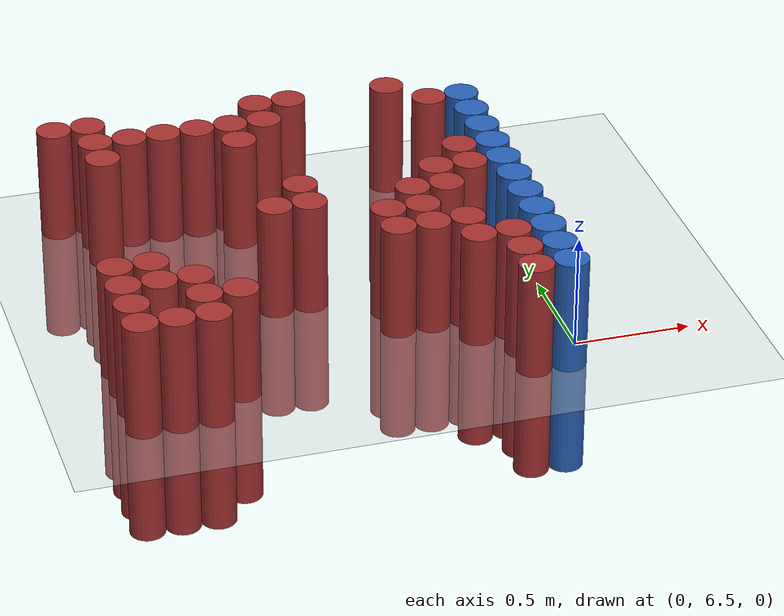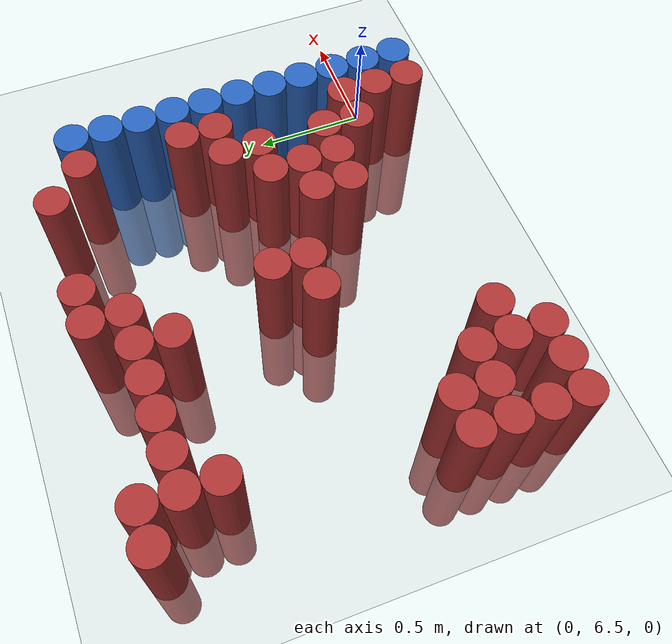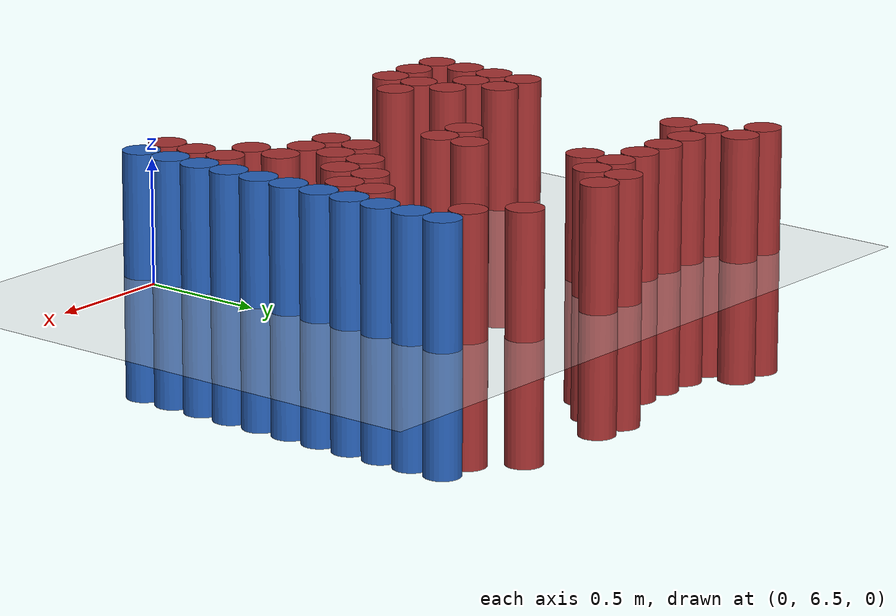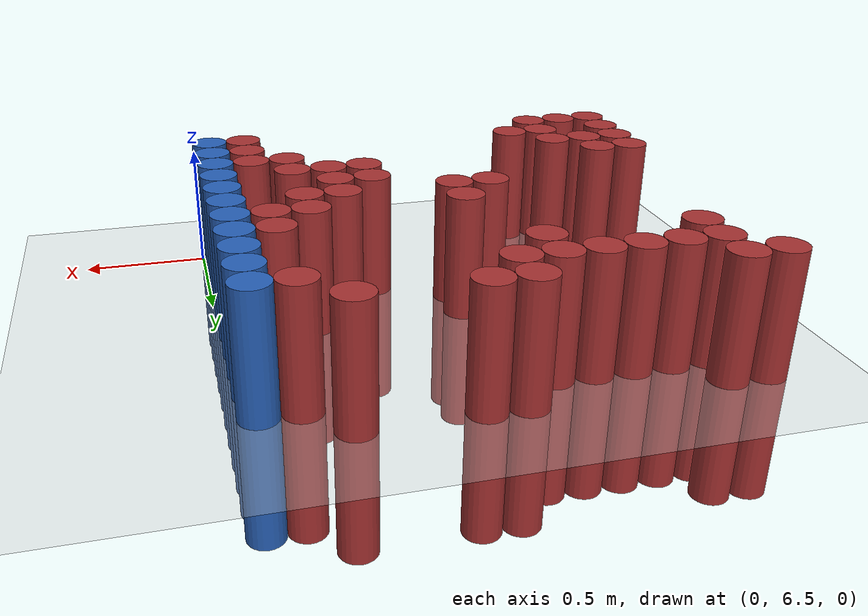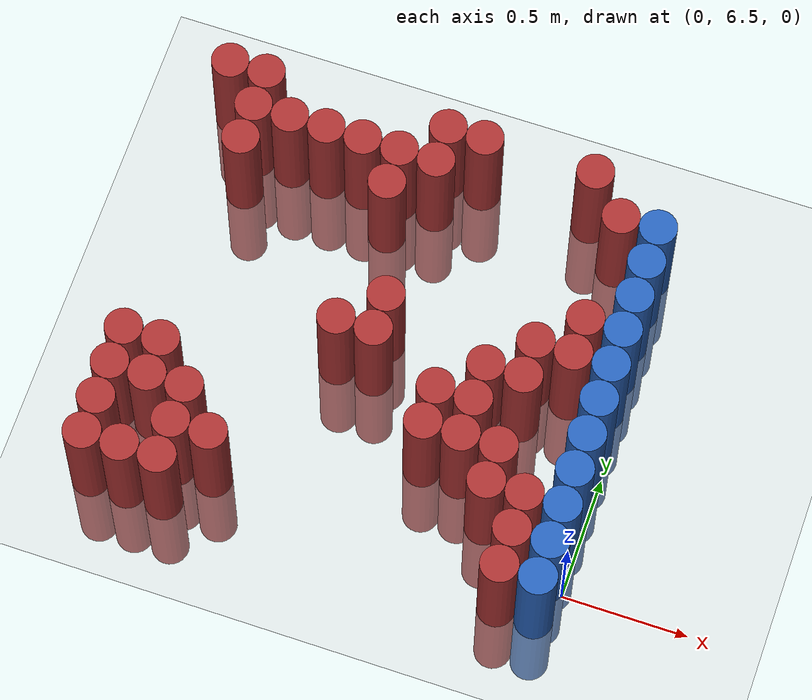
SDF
<sdf version="1.6">
 <world name="default">
  <model name="ground_plane">
   <static>1</static>
   <link name="link">
    <collision name="collision">
     <geometry><plane><normal>0 0 1</normal><size>100 100</size></plane></geometry>
     <surface><friction><ode><mu>100</mu><mu2>50</mu2></ode></friction></surface>
    </collision>
    <visual name="visual">
     <cast_shadows>0</cast_shadows>
     <geometry><plane><normal>0 0 1</normal><size>100 100</size></plane></geometry>
     <material>
      <script><uri>file://media/materials/scripts/gazebo.material</uri><name>Gazebo/Grey</name></script>
     </material>
    </visual>
   </link>
  </model>
  <model name="unit_cylinder_183">
   <static>1</static>
   <pose>-1.875000 6.375000 0.000000 0.000000 0.000000 0.000000</pose>
   <link name="link">
    <inertial>
     <mass>1</mass>
     <inertia><ixx>0.145833</ixx><ixy>0</ixy><ixz>0</ixz><iyy>0.145833</iyy><iyz>0</iyz><izz>0.125</izz></inertia>
    </inertial>
    <collision name="collision">
     <geometry><cylinder><radius>0.075000</radius><length>1</length></cylinder></geometry>
    </collision>
    <visual name="visual">
     <geometry><cylinder><radius>0.075000</radius><length>1</length></cylinder></geometry>
     <material>
      <ambient>0.648000 0.192000 0.192000 1</ambient>
      <diffuse>0.648000 0.192000 0.192000 1</diffuse>
     </material>
     <material>
      <script><name>Gazebo/Grey</name><uri>file://media/materials/scripts/gazebo.material</uri></script>
     </material>
    </visual>
   </link>
  </model>
  <model name="unit_cylinder_184">
   <static>1</static>
   <pose>-1.875000 6.525000 0.000000 0.000000 0.000000 0.000000</pose>
   <link name="link">
    <inertial>
     <mass>1</mass>
     <inertia><ixx>0.145833</ixx><ixy>0</ixy><ixz>0</ixz><iyy>0.145833</iyy><iyz>0</iyz><izz>0.125</izz></inertia>
    </inertial>
    <collision name="collision">
     <geometry><cylinder><radius>0.075000</radius><length>1</length></cylinder></geometry>
    </collision>
    <visual name="visual">
     <geometry><cylinder><radius>0.075000</radius><length>1</length></cylinder></geometry>
     <material>
      <ambient>0.648000 0.192000 0.192000 1</ambient>
      <diffuse>0.648000 0.192000 0.192000 1</diffuse>
     </material>
     <material>
      <script><name>Gazebo/Grey</name><uri>file://media/materials/scripts/gazebo.material</uri></script>
     </material>
    </visual>
   </link>
  </model>
  <model name="unit_cylinder_185">
   <static>1</static>
   <pose>-1.875000 6.675000 0.000000 0.000000 0.000000 0.000000</pose>
   <link name="link">
    <inertial>
     <mass>1</mass>
     <inertia><ixx>0.145833</ixx><ixy>0</ixy><ixz>0</ixz><iyy>0.145833</iyy><iyz>0</iyz><izz>0.125</izz></inertia>
    </inertial>
    <collision name="collision">
     <geometry><cylinder><radius>0.075000</radius><length>1</length></cylinder></geometry>
    </collision>
    <visual name="visual">
     <geometry><cylinder><radius>0.075000</radius><length>1</length></cylinder></geometry>
     <material>
      <ambient>0.648000 0.192000 0.192000 1</ambient>
      <diffuse>0.648000 0.192000 0.192000 1</diffuse>
     </material>
     <material>
      <script><name>Gazebo/Grey</name><uri>file://media/materials/scripts/gazebo.material</uri></script>
     </material>
    </visual>
   </link>
  </model>
  <model name="unit_cylinder_186">
   <static>1</static>
   <pose>-1.875000 6.825000 0.000000 0.000000 0.000000 0.000000</pose>
   <link name="link">
    <inertial>
     <mass>1</mass>
     <inertia><ixx>0.145833</ixx><ixy>0</ixy><ixz>0</ixz><iyy>0.145833</iyy><iyz>0</iyz><izz>0.125</izz></inertia>
    </inertial>
    <collision name="collision">
     <geometry><cylinder><radius>0.075000</radius><length>1</length></cylinder></geometry>
    </collision>
    <visual name="visual">
     <geometry><cylinder><radius>0.075000</radius><length>1</length></cylinder></geometry>
     <material>
      <ambient>0.648000 0.192000 0.192000 1</ambient>
      <diffuse>0.648000 0.192000 0.192000 1</diffuse>
     </material>
     <material>
      <script><name>Gazebo/Grey</name><uri>file://media/materials/scripts/gazebo.material</uri></script>
     </material>
    </visual>
   </link>
  </model>
  <model name="unit_cylinder_187">
   <static>1</static>
   <pose>-1.875000 8.025000 0.000000 0.000000 0.000000 0.000000</pose>
   <link name="link">
    <inertial>
     <mass>1</mass>
     <inertia><ixx>0.145833</ixx><ixy>0</ixy><ixz>0</ixz><iyy>0.145833</iyy><iyz>0</iyz><izz>0.125</izz></inertia>
    </inertial>
    <collision name="collision">
     <geometry><cylinder><radius>0.075000</radius><length>1</length></cylinder></geometry>
    </collision>
    <visual name="visual">
     <geometry><cylinder><radius>0.075000</radius><length>1</length></cylinder></geometry>
     <material>
      <ambient>0.648000 0.192000 0.192000 1</ambient>
      <diffuse>0.648000 0.192000 0.192000 1</diffuse>
     </material>
     <material>
      <script><name>Gazebo/Grey</name><uri>file://media/materials/scripts/gazebo.material</uri></script>
     </material>
    </visual>
   </link>
  </model>
  <model name="unit_cylinder_197">
   <static>1</static>
   <pose>-1.725000 6.375000 0.000000 0.000000 0.000000 0.000000</pose>
   <link name="link">
    <inertial>
     <mass>1</mass>
     <inertia><ixx>0.145833</ixx><ixy>0</ixy><ixz>0</ixz><iyy>0.145833</iyy><iyz>0</iyz><izz>0.125</izz></inertia>
    </inertial>
    <collision name="collision">
     <geometry><cylinder><radius>0.075000</radius><length>1</length></cylinder></geometry>
    </collision>
    <visual name="visual">
     <geometry><cylinder><radius>0.075000</radius><length>1</length></cylinder></geometry>
     <material>
      <ambient>0.648000 0.192000 0.192000 1</ambient>
      <diffuse>0.648000 0.192000 0.192000 1</diffuse>
     </material>
     <material>
      <script><name>Gazebo/Grey</name><uri>file://media/materials/scripts/gazebo.material</uri></script>
     </material>
    </visual>
   </link>
  </model>
  <model name="unit_cylinder_198">
   <static>1</static>
   <pose>-1.725000 6.675000 0.000000 0.000000 0.000000 0.000000</pose>
   <link name="link">
    <inertial>
     <mass>1</mass>
     <inertia><ixx>0.145833</ixx><ixy>0</ixy><ixz>0</ixz><iyy>0.145833</iyy><iyz>0</iyz><izz>0.125</izz></inertia>
    </inertial>
    <collision name="collision">
     <geometry><cylinder><radius>0.075000</radius><length>1</length></cylinder></geometry>
    </collision>
    <visual name="visual">
     <geometry><cylinder><radius>0.075000</radius><length>1</length></cylinder></geometry>
     <material>
      <ambient>0.648000 0.192000 0.192000 1</ambient>
      <diffuse>0.648000 0.192000 0.192000 1</diffuse>
     </material>
     <material>
      <script><name>Gazebo/Grey</name><uri>file://media/materials/scripts/gazebo.material</uri></script>
     </material>
    </visual>
   </link>
  </model>
  <model name="unit_cylinder_199">
   <static>1</static>
   <pose>-1.725000 6.825000 0.000000 0.000000 0.000000 0.000000</pose>
   <link name="link">
    <inertial>
     <mass>1</mass>
     <inertia><ixx>0.145833</ixx><ixy>0</ixy><ixz>0</ixz><iyy>0.145833</iyy><iyz>0</iyz><izz>0.125</izz></inertia>
    </inertial>
    <collision name="collision">
     <geometry><cylinder><radius>0.075000</radius><length>1</length></cylinder></geometry>
    </collision>
    <visual name="visual">
     <geometry><cylinder><radius>0.075000</radius><length>1</length></cylinder></geometry>
     <material>
      <ambient>0.648000 0.192000 0.192000 1</ambient>
      <diffuse>0.648000 0.192000 0.192000 1</diffuse>
     </material>
     <material>
      <script><name>Gazebo/Grey</name><uri>file://media/materials/scripts/gazebo.material</uri></script>
     </material>
    </visual>
   </link>
  </model>
  <model name="unit_cylinder_200">
   <static>1</static>
   <pose>-1.725000 7.725000 0.000000 0.000000 0.000000 0.000000</pose>
   <link name="link">
    <inertial>
     <mass>1</mass>
     <inertia><ixx>0.145833</ixx><ixy>0</ixy><ixz>0</ixz><iyy>0.145833</iyy><iyz>0</iyz><izz>0.125</izz></inertia>
    </inertial>
    <collision name="collision">
     <geometry><cylinder><radius>0.075000</radius><length>1</length></cylinder></geometry>
    </collision>
    <visual name="visual">
     <geometry><cylinder><radius>0.075000</radius><length>1</length></cylinder></geometry>
     <material>
      <ambient>0.648000 0.192000 0.192000 1</ambient>
      <diffuse>0.648000 0.192000 0.192000 1</diffuse>
     </material>
     <material>
      <script><name>Gazebo/Grey</name><uri>file://media/materials/scripts/gazebo.material</uri></script>
     </material>
    </visual>
   </link>
  </model>
  <model name="unit_cylinder_201">
   <static>1</static>
   <pose>-1.725000 7.875000 0.000000 0.000000 0.000000 0.000000</pose>
   <link name="link">
    <inertial>
     <mass>1</mass>
     <inertia><ixx>0.145833</ixx><ixy>0</ixy><ixz>0</ixz><iyy>0.145833</iyy><iyz>0</iyz><izz>0.125</izz></inertia>
    </inertial>
    <collision name="collision">
     <geometry><cylinder><radius>0.075000</radius><length>1</length></cylinder></geometry>
    </collision>
    <visual name="visual">
     <geometry><cylinder><radius>0.075000</radius><length>1</length></cylinder></geometry>
     <material>
      <ambient>0.648000 0.192000 0.192000 1</ambient>
      <diffuse>0.648000 0.192000 0.192000 1</diffuse>
     </material>
     <material>
      <script><name>Gazebo/Grey</name><uri>file://media/materials/scripts/gazebo.material</uri></script>
     </material>
    </visual>
   </link>
  </model>
  <model name="unit_cylinder_202">
   <static>1</static>
   <pose>-1.725000 8.025000 0.000000 0.000000 0.000000 0.000000</pose>
   <link name="link">
    <inertial>
     <mass>1</mass>
     <inertia><ixx>0.145833</ixx><ixy>0</ixy><ixz>0</ixz><iyy>0.145833</iyy><iyz>0</iyz><izz>0.125</izz></inertia>
    </inertial>
    <collision name="collision">
     <geometry><cylinder><radius>0.075000</radius><length>1</length></cylinder></geometry>
    </collision>
    <visual name="visual">
     <geometry><cylinder><radius>0.075000</radius><length>1</length></cylinder></geometry>
     <material>
      <ambient>0.648000 0.192000 0.192000 1</ambient>
      <diffuse>0.648000 0.192000 0.192000 1</diffuse>
     </material>
     <material>
      <script><name>Gazebo/Grey</name><uri>file://media/materials/scripts/gazebo.material</uri></script>
     </material>
    </visual>
   </link>
  </model>
  <model name="unit_cylinder_207">
   <static>1</static>
   <pose>-1.575000 6.375000 0.000000 0.000000 0.000000 0.000000</pose>
   <link name="link">
    <inertial>
     <mass>1</mass>
     <inertia><ixx>0.145833</ixx><ixy>0</ixy><ixz>0</ixz><iyy>0.145833</iyy><iyz>0</iyz><izz>0.125</izz></inertia>
    </inertial>
    <collision name="collision">
     <geometry><cylinder><radius>0.075000</radius><length>1</length></cylinder></geometry>
    </collision>
    <visual name="visual">
     <geometry><cylinder><radius>0.075000</radius><length>1</length></cylinder></geometry>
     <material>
      <ambient>0.648000 0.192000 0.192000 1</ambient>
      <diffuse>0.648000 0.192000 0.192000 1</diffuse>
     </material>
     <material>
      <script><name>Gazebo/Grey</name><uri>file://media/materials/scripts/gazebo.material</uri></script>
     </material>
    </visual>
   </link>
  </model>
  <model name="unit_cylinder_208">
   <static>1</static>
   <pose>-1.575000 6.525000 0.000000 0.000000 0.000000 0.000000</pose>
   <link name="link">
    <inertial>
     <mass>1</mass>
     <inertia><ixx>0.145833</ixx><ixy>0</ixy><ixz>0</ixz><iyy>0.145833</iyy><iyz>0</iyz><izz>0.125</izz></inertia>
    </inertial>
    <collision name="collision">
     <geometry><cylinder><radius>0.075000</radius><length>1</length></cylinder></geometry>
    </collision>
    <visual name="visual">
     <geometry><cylinder><radius>0.075000</radius><length>1</length></cylinder></geometry>
     <material>
      <ambient>0.648000 0.192000 0.192000 1</ambient>
      <diffuse>0.648000 0.192000 0.192000 1</diffuse>
     </material>
     <material>
      <script><name>Gazebo/Grey</name><uri>file://media/materials/scripts/gazebo.material</uri></script>
     </material>
    </visual>
   </link>
  </model>
  <model name="unit_cylinder_209">
   <static>1</static>
   <pose>-1.575000 6.675000 0.000000 0.000000 0.000000 0.000000</pose>
   <link name="link">
    <inertial>
     <mass>1</mass>
     <inertia><ixx>0.145833</ixx><ixy>0</ixy><ixz>0</ixz><iyy>0.145833</iyy><iyz>0</iyz><izz>0.125</izz></inertia>
    </inertial>
    <collision name="collision">
     <geometry><cylinder><radius>0.075000</radius><length>1</length></cylinder></geometry>
    </collision>
    <visual name="visual">
     <geometry><cylinder><radius>0.075000</radius><length>1</length></cylinder></geometry>
     <material>
      <ambient>0.648000 0.192000 0.192000 1</ambient>
      <diffuse>0.648000 0.192000 0.192000 1</diffuse>
     </material>
     <material>
      <script><name>Gazebo/Grey</name><uri>file://media/materials/scripts/gazebo.material</uri></script>
     </material>
    </visual>
   </link>
  </model>
  <model name="unit_cylinder_210">
   <static>1</static>
   <pose>-1.575000 7.875000 0.000000 0.000000 0.000000 0.000000</pose>
   <link name="link">
    <inertial>
     <mass>1</mass>
     <inertia><ixx>0.145833</ixx><ixy>0</ixy><ixz>0</ixz><iyy>0.145833</iyy><iyz>0</iyz><izz>0.125</izz></inertia>
    </inertial>
    <collision name="collision">
     <geometry><cylinder><radius>0.075000</radius><length>1</length></cylinder></geometry>
    </collision>
    <visual name="visual">
     <geometry><cylinder><radius>0.075000</radius><length>1</length></cylinder></geometry>
     <material>
      <ambient>0.648000 0.192000 0.192000 1</ambient>
      <diffuse>0.648000 0.192000 0.192000 1</diffuse>
     </material>
     <material>
      <script><name>Gazebo/Grey</name><uri>file://media/materials/scripts/gazebo.material</uri></script>
     </material>
    </visual>
   </link>
  </model>
  <model name="unit_cylinder_215">
   <static>1</static>
   <pose>-1.425000 6.525000 0.000000 0.000000 0.000000 0.000000</pose>
   <link name="link">
    <inertial>
     <mass>1</mass>
     <inertia><ixx>0.145833</ixx><ixy>0</ixy><ixz>0</ixz><iyy>0.145833</iyy><iyz>0</iyz><izz>0.125</izz></inertia>
    </inertial>
    <collision name="collision">
     <geometry><cylinder><radius>0.075000</radius><length>1</length></cylinder></geometry>
    </collision>
    <visual name="visual">
     <geometry><cylinder><radius>0.075000</radius><length>1</length></cylinder></geometry>
     <material>
      <ambient>0.648000 0.192000 0.192000 1</ambient>
      <diffuse>0.648000 0.192000 0.192000 1</diffuse>
     </material>
     <material>
      <script><name>Gazebo/Grey</name><uri>file://media/materials/scripts/gazebo.material</uri></script>
     </material>
    </visual>
   </link>
  </model>
  <model name="unit_cylinder_216">
   <static>1</static>
   <pose>-1.425000 7.875000 0.000000 0.000000 0.000000 0.000000</pose>
   <link name="link">
    <inertial>
     <mass>1</mass>
     <inertia><ixx>0.145833</ixx><ixy>0</ixy><ixz>0</ixz><iyy>0.145833</iyy><iyz>0</iyz><izz>0.125</izz></inertia>
    </inertial>
    <collision name="collision">
     <geometry><cylinder><radius>0.075000</radius><length>1</length></cylinder></geometry>
    </collision>
    <visual name="visual">
     <geometry><cylinder><radius>0.075000</radius><length>1</length></cylinder></geometry>
     <material>
      <ambient>0.648000 0.192000 0.192000 1</ambient>
      <diffuse>0.648000 0.192000 0.192000 1</diffuse>
     </material>
     <material>
      <script><name>Gazebo/Grey</name><uri>file://media/materials/scripts/gazebo.material</uri></script>
     </material>
    </visual>
   </link>
  </model>
  <model name="unit_cylinder_222">
   <static>1</static>
   <pose>-1.275000 7.875000 0.000000 0.000000 0.000000 0.000000</pose>
   <link name="link">
    <inertial>
     <mass>1</mass>
     <inertia><ixx>0.145833</ixx><ixy>0</ixy><ixz>0</ixz><iyy>0.145833</iyy><iyz>0</iyz><izz>0.125</izz></inertia>
    </inertial>
    <collision name="collision">
     <geometry><cylinder><radius>0.075000</radius><length>1</length></cylinder></geometry>
    </collision>
    <visual name="visual">
     <geometry><cylinder><radius>0.075000</radius><length>1</length></cylinder></geometry>
     <material>
      <ambient>0.648000 0.192000 0.192000 1</ambient>
      <diffuse>0.648000 0.192000 0.192000 1</diffuse>
     </material>
     <material>
      <script><name>Gazebo/Grey</name><uri>file://media/materials/scripts/gazebo.material</uri></script>
     </material>
    </visual>
   </link>
  </model>
  <model name="unit_cylinder_228">
   <static>1</static>
   <pose>-1.125000 7.125000 0.000000 0.000000 0.000000 0.000000</pose>
   <link name="link">
    <inertial>
     <mass>1</mass>
     <inertia><ixx>0.145833</ixx><ixy>0</ixy><ixz>0</ixz><iyy>0.145833</iyy><iyz>0</iyz><izz>0.125</izz></inertia>
    </inertial>
    <collision name="collision">
     <geometry><cylinder><radius>0.075000</radius><length>1</length></cylinder></geometry>
    </collision>
    <visual name="visual">
     <geometry><cylinder><radius>0.075000</radius><length>1</length></cylinder></geometry>
     <material>
      <ambient>0.648000 0.192000 0.192000 1</ambient>
      <diffuse>0.648000 0.192000 0.192000 1</diffuse>
     </material>
     <material>
      <script><name>Gazebo/Grey</name><uri>file://media/materials/scripts/gazebo.material</uri></script>
     </material>
    </visual>
   </link>
  </model>
  <model name="unit_cylinder_229">
   <static>1</static>
   <pose>-1.125000 7.725000 0.000000 0.000000 0.000000 0.000000</pose>
   <link name="link">
    <inertial>
     <mass>1</mass>
     <inertia><ixx>0.145833</ixx><ixy>0</ixy><ixz>0</ixz><iyy>0.145833</iyy><iyz>0</iyz><izz>0.125</izz></inertia>
    </inertial>
    <collision name="collision">
     <geometry><cylinder><radius>0.075000</radius><length>1</length></cylinder></geometry>
    </collision>
    <visual name="visual">
     <geometry><cylinder><radius>0.075000</radius><length>1</length></cylinder></geometry>
     <material>
      <ambient>0.648000 0.192000 0.192000 1</ambient>
      <diffuse>0.648000 0.192000 0.192000 1</diffuse>
     </material>
     <material>
      <script><name>Gazebo/Grey</name><uri>file://media/materials/scripts/gazebo.material</uri></script>
     </material>
    </visual>
   </link>
  </model>
  <model name="unit_cylinder_230">
   <static>1</static>
   <pose>-1.125000 7.875000 0.000000 0.000000 0.000000 0.000000</pose>
   <link name="link">
    <inertial>
     <mass>1</mass>
     <inertia><ixx>0.145833</ixx><ixy>0</ixy><ixz>0</ixz><iyy>0.145833</iyy><iyz>0</iyz><izz>0.125</izz></inertia>
    </inertial>
    <collision name="collision">
     <geometry><cylinder><radius>0.075000</radius><length>1</length></cylinder></geometry>
    </collision>
    <visual name="visual">
     <geometry><cylinder><radius>0.075000</radius><length>1</length></cylinder></geometry>
     <material>
      <ambient>0.648000 0.192000 0.192000 1</ambient>
      <diffuse>0.648000 0.192000 0.192000 1</diffuse>
     </material>
     <material>
      <script><name>Gazebo/Grey</name><uri>file://media/materials/scripts/gazebo.material</uri></script>
     </material>
    </visual>
   </link>
  </model>
  <model name="unit_cylinder_236">
   <static>1</static>
   <pose>-0.975000 7.125000 0.000000 0.000000 0.000000 0.000000</pose>
   <link name="link">
    <inertial>
     <mass>1</mass>
     <inertia><ixx>0.145833</ixx><ixy>0</ixy><ixz>0</ixz><iyy>0.145833</iyy><iyz>0</iyz><izz>0.125</izz></inertia>
    </inertial>
    <collision name="collision">
     <geometry><cylinder><radius>0.075000</radius><length>1</length></cylinder></geometry>
    </collision>
    <visual name="visual">
     <geometry><cylinder><radius>0.075000</radius><length>1</length></cylinder></geometry>
     <material>
      <ambient>0.648000 0.192000 0.192000 1</ambient>
      <diffuse>0.648000 0.192000 0.192000 1</diffuse>
     </material>
     <material>
      <script><name>Gazebo/Grey</name><uri>file://media/materials/scripts/gazebo.material</uri></script>
     </material>
    </visual>
   </link>
  </model>
  <model name="unit_cylinder_237">
   <static>1</static>
   <pose>-0.975000 7.275000 0.000000 0.000000 0.000000 0.000000</pose>
   <link name="link">
    <inertial>
     <mass>1</mass>
     <inertia><ixx>0.145833</ixx><ixy>0</ixy><ixz>0</ixz><iyy>0.145833</iyy><iyz>0</iyz><izz>0.125</izz></inertia>
    </inertial>
    <collision name="collision">
     <geometry><cylinder><radius>0.075000</radius><length>1</length></cylinder></geometry>
    </collision>
    <visual name="visual">
     <geometry><cylinder><radius>0.075000</radius><length>1</length></cylinder></geometry>
     <material>
      <ambient>0.648000 0.192000 0.192000 1</ambient>
      <diffuse>0.648000 0.192000 0.192000 1</diffuse>
     </material>
     <material>
      <script><name>Gazebo/Grey</name><uri>file://media/materials/scripts/gazebo.material</uri></script>
     </material>
    </visual>
   </link>
  </model>
  <model name="unit_cylinder_238">
   <static>1</static>
   <pose>-0.975000 7.875000 0.000000 0.000000 0.000000 0.000000</pose>
   <link name="link">
    <inertial>
     <mass>1</mass>
     <inertia><ixx>0.145833</ixx><ixy>0</ixy><ixz>0</ixz><iyy>0.145833</iyy><iyz>0</iyz><izz>0.125</izz></inertia>
    </inertial>
    <collision name="collision">
     <geometry><cylinder><radius>0.075000</radius><length>1</length></cylinder></geometry>
    </collision>
    <visual name="visual">
     <geometry><cylinder><radius>0.075000</radius><length>1</length></cylinder></geometry>
     <material>
      <ambient>0.648000 0.192000 0.192000 1</ambient>
      <diffuse>0.648000 0.192000 0.192000 1</diffuse>
     </material>
     <material>
      <script><name>Gazebo/Grey</name><uri>file://media/materials/scripts/gazebo.material</uri></script>
     </material>
    </visual>
   </link>
  </model>
  <model name="unit_cylinder_239">
   <static>1</static>
   <pose>-0.975000 8.025000 0.000000 0.000000 0.000000 0.000000</pose>
   <link name="link">
    <inertial>
     <mass>1</mass>
     <inertia><ixx>0.145833</ixx><ixy>0</ixy><ixz>0</ixz><iyy>0.145833</iyy><iyz>0</iyz><izz>0.125</izz></inertia>
    </inertial>
    <collision name="collision">
     <geometry><cylinder><radius>0.075000</radius><length>1</length></cylinder></geometry>
    </collision>
    <visual name="visual">
     <geometry><cylinder><radius>0.075000</radius><length>1</length></cylinder></geometry>
     <material>
      <ambient>0.648000 0.192000 0.192000 1</ambient>
      <diffuse>0.648000 0.192000 0.192000 1</diffuse>
     </material>
     <material>
      <script><name>Gazebo/Grey</name><uri>file://media/materials/scripts/gazebo.material</uri></script>
     </material>
    </visual>
   </link>
  </model>
  <model name="unit_cylinder_243">
   <static>1</static>
   <pose>-0.825000 8.025000 0.000000 0.000000 0.000000 0.000000</pose>
   <link name="link">
    <inertial>
     <mass>1</mass>
     <inertia><ixx>0.145833</ixx><ixy>0</ixy><ixz>0</ixz><iyy>0.145833</iyy><iyz>0</iyz><izz>0.125</izz></inertia>
    </inertial>
    <collision name="collision">
     <geometry><cylinder><radius>0.075000</radius><length>1</length></cylinder></geometry>
    </collision>
    <visual name="visual">
     <geometry><cylinder><radius>0.075000</radius><length>1</length></cylinder></geometry>
     <material>
      <ambient>0.648000 0.192000 0.192000 1</ambient>
      <diffuse>0.648000 0.192000 0.192000 1</diffuse>
     </material>
     <material>
      <script><name>Gazebo/Grey</name><uri>file://media/materials/scripts/gazebo.material</uri></script>
     </material>
    </visual>
   </link>
  </model>
  <model name="unit_cylinder_247">
   <static>1</static>
   <pose>-0.675000 6.825000 0.000000 0.000000 0.000000 0.000000</pose>
   <link name="link">
    <inertial>
     <mass>1</mass>
     <inertia><ixx>0.145833</ixx><ixy>0</ixy><ixz>0</ixz><iyy>0.145833</iyy><iyz>0</iyz><izz>0.125</izz></inertia>
    </inertial>
    <collision name="collision">
     <geometry><cylinder><radius>0.075000</radius><length>1</length></cylinder></geometry>
    </collision>
    <visual name="visual">
     <geometry><cylinder><radius>0.075000</radius><length>1</length></cylinder></geometry>
     <material>
      <ambient>0.648000 0.192000 0.192000 1</ambient>
      <diffuse>0.648000 0.192000 0.192000 1</diffuse>
     </material>
     <material>
      <script><name>Gazebo/Grey</name><uri>file://media/materials/scripts/gazebo.material</uri></script>
     </material>
    </visual>
   </link>
  </model>
  <model name="unit_cylinder_248">
   <static>1</static>
   <pose>-0.675000 6.975000 0.000000 0.000000 0.000000 0.000000</pose>
   <link name="link">
    <inertial>
     <mass>1</mass>
     <inertia><ixx>0.145833</ixx><ixy>0</ixy><ixz>0</ixz><iyy>0.145833</iyy><iyz>0</iyz><izz>0.125</izz></inertia>
    </inertial>
    <collision name="collision">
     <geometry><cylinder><radius>0.075000</radius><length>1</length></cylinder></geometry>
    </collision>
    <visual name="visual">
     <geometry><cylinder><radius>0.075000</radius><length>1</length></cylinder></geometry>
     <material>
      <ambient>0.648000 0.192000 0.192000 1</ambient>
      <diffuse>0.648000 0.192000 0.192000 1</diffuse>
     </material>
     <material>
      <script><name>Gazebo/Grey</name><uri>file://media/materials/scripts/gazebo.material</uri></script>
     </material>
    </visual>
   </link>
  </model>
  <model name="unit_cylinder_254">
   <static>1</static>
   <pose>-0.525000 6.825000 0.000000 0.000000 0.000000 0.000000</pose>
   <link name="link">
    <inertial>
     <mass>1</mass>
     <inertia><ixx>0.145833</ixx><ixy>0</ixy><ixz>0</ixz><iyy>0.145833</iyy><iyz>0</iyz><izz>0.125</izz></inertia>
    </inertial>
    <collision name="collision">
     <geometry><cylinder><radius>0.075000</radius><length>1</length></cylinder></geometry>
    </collision>
    <visual name="visual">
     <geometry><cylinder><radius>0.075000</radius><length>1</length></cylinder></geometry>
     <material>
      <ambient>0.648000 0.192000 0.192000 1</ambient>
      <diffuse>0.648000 0.192000 0.192000 1</diffuse>
     </material>
     <material>
      <script><name>Gazebo/Grey</name><uri>file://media/materials/scripts/gazebo.material</uri></script>
     </material>
    </visual>
   </link>
  </model>
  <model name="unit_cylinder_255">
   <static>1</static>
   <pose>-0.525000 6.975000 0.000000 0.000000 0.000000 0.000000</pose>
   <link name="link">
    <inertial>
     <mass>1</mass>
     <inertia><ixx>0.145833</ixx><ixy>0</ixy><ixz>0</ixz><iyy>0.145833</iyy><iyz>0</iyz><izz>0.125</izz></inertia>
    </inertial>
    <collision name="collision">
     <geometry><cylinder><radius>0.075000</radius><length>1</length></cylinder></geometry>
    </collision>
    <visual name="visual">
     <geometry><cylinder><radius>0.075000</radius><length>1</length></cylinder></geometry>
     <material>
      <ambient>0.648000 0.192000 0.192000 1</ambient>
      <diffuse>0.648000 0.192000 0.192000 1</diffuse>
     </material>
     <material>
      <script><name>Gazebo/Grey</name><uri>file://media/materials/scripts/gazebo.material</uri></script>
     </material>
    </visual>
   </link>
  </model>
  <model name="unit_cylinder_256">
   <static>1</static>
   <pose>-0.525000 7.125000 0.000000 0.000000 0.000000 0.000000</pose>
   <link name="link">
    <inertial>
     <mass>1</mass>
     <inertia><ixx>0.145833</ixx><ixy>0</ixy><ixz>0</ixz><iyy>0.145833</iyy><iyz>0</iyz><izz>0.125</izz></inertia>
    </inertial>
    <collision name="collision">
     <geometry><cylinder><radius>0.075000</radius><length>1</length></cylinder></geometry>
    </collision>
    <visual name="visual">
     <geometry><cylinder><radius>0.075000</radius><length>1</length></cylinder></geometry>
     <material>
      <ambient>0.648000 0.192000 0.192000 1</ambient>
      <diffuse>0.648000 0.192000 0.192000 1</diffuse>
     </material>
     <material>
      <script><name>Gazebo/Grey</name><uri>file://media/materials/scripts/gazebo.material</uri></script>
     </material>
    </visual>
   </link>
  </model>
  <model name="unit_cylinder_263">
   <static>1</static>
   <pose>-0.375000 6.675000 0.000000 0.000000 0.000000 0.000000</pose>
   <link name="link">
    <inertial>
     <mass>1</mass>
     <inertia><ixx>0.145833</ixx><ixy>0</ixy><ixz>0</ixz><iyy>0.145833</iyy><iyz>0</iyz><izz>0.125</izz></inertia>
    </inertial>
    <collision name="collision">
     <geometry><cylinder><radius>0.075000</radius><length>1</length></cylinder></geometry>
    </collision>
    <visual name="visual">
     <geometry><cylinder><radius>0.075000</radius><length>1</length></cylinder></geometry>
     <material>
      <ambient>0.648000 0.192000 0.192000 1</ambient>
      <diffuse>0.648000 0.192000 0.192000 1</diffuse>
     </material>
     <material>
      <script><name>Gazebo/Grey</name><uri>file://media/materials/scripts/gazebo.material</uri></script>
     </material>
    </visual>
   </link>
  </model>
  <model name="unit_cylinder_264">
   <static>1</static>
   <pose>-0.375000 6.825000 0.000000 0.000000 0.000000 0.000000</pose>
   <link name="link">
    <inertial>
     <mass>1</mass>
     <inertia><ixx>0.145833</ixx><ixy>0</ixy><ixz>0</ixz><iyy>0.145833</iyy><iyz>0</iyz><izz>0.125</izz></inertia>
    </inertial>
    <collision name="collision">
     <geometry><cylinder><radius>0.075000</radius><length>1</length></cylinder></geometry>
    </collision>
    <visual name="visual">
     <geometry><cylinder><radius>0.075000</radius><length>1</length></cylinder></geometry>
     <material>
      <ambient>0.648000 0.192000 0.192000 1</ambient>
      <diffuse>0.648000 0.192000 0.192000 1</diffuse>
     </material>
     <material>
      <script><name>Gazebo/Grey</name><uri>file://media/materials/scripts/gazebo.material</uri></script>
     </material>
    </visual>
   </link>
  </model>
  <model name="unit_cylinder_265">
   <static>1</static>
   <pose>-0.375000 7.125000 0.000000 0.000000 0.000000 0.000000</pose>
   <link name="link">
    <inertial>
     <mass>1</mass>
     <inertia><ixx>0.145833</ixx><ixy>0</ixy><ixz>0</ixz><iyy>0.145833</iyy><iyz>0</iyz><izz>0.125</izz></inertia>
    </inertial>
    <collision name="collision">
     <geometry><cylinder><radius>0.075000</radius><length>1</length></cylinder></geometry>
    </collision>
    <visual name="visual">
     <geometry><cylinder><radius>0.075000</radius><length>1</length></cylinder></geometry>
     <material>
      <ambient>0.648000 0.192000 0.192000 1</ambient>
      <diffuse>0.648000 0.192000 0.192000 1</diffuse>
     </material>
     <material>
      <script><name>Gazebo/Grey</name><uri>file://media/materials/scripts/gazebo.material</uri></script>
     </material>
    </visual>
   </link>
  </model>
  <model name="unit_cylinder_266">
   <static>1</static>
   <pose>-0.375000 7.275000 0.000000 0.000000 0.000000 0.000000</pose>
   <link name="link">
    <inertial>
     <mass>1</mass>
     <inertia><ixx>0.145833</ixx><ixy>0</ixy><ixz>0</ixz><iyy>0.145833</iyy><iyz>0</iyz><izz>0.125</izz></inertia>
    </inertial>
    <collision name="collision">
     <geometry><cylinder><radius>0.075000</radius><length>1</length></cylinder></geometry>
    </collision>
    <visual name="visual">
     <geometry><cylinder><radius>0.075000</radius><length>1</length></cylinder></geometry>
     <material>
      <ambient>0.648000 0.192000 0.192000 1</ambient>
      <diffuse>0.648000 0.192000 0.192000 1</diffuse>
     </material>
     <material>
      <script><name>Gazebo/Grey</name><uri>file://media/materials/scripts/gazebo.material</uri></script>
     </material>
    </visual>
   </link>
  </model>
  <model name="unit_cylinder_267">
   <static>1</static>
   <pose>-0.375000 8.025000 0.000000 0.000000 0.000000 0.000000</pose>
   <link name="link">
    <inertial>
     <mass>1</mass>
     <inertia><ixx>0.145833</ixx><ixy>0</ixy><ixz>0</ixz><iyy>0.145833</iyy><iyz>0</iyz><izz>0.125</izz></inertia>
    </inertial>
    <collision name="collision">
     <geometry><cylinder><radius>0.075000</radius><length>1</length></cylinder></geometry>
    </collision>
    <visual name="visual">
     <geometry><cylinder><radius>0.075000</radius><length>1</length></cylinder></geometry>
     <material>
      <ambient>0.648000 0.192000 0.192000 1</ambient>
      <diffuse>0.648000 0.192000 0.192000 1</diffuse>
     </material>
     <material>
      <script><name>Gazebo/Grey</name><uri>file://media/materials/scripts/gazebo.material</uri></script>
     </material>
    </visual>
   </link>
  </model>
  <model name="unit_cylinder_275">
   <static>1</static>
   <pose>-0.225000 6.375000 0.000000 0.000000 0.000000 0.000000</pose>
   <link name="link">
    <inertial>
     <mass>1</mass>
     <inertia><ixx>0.145833</ixx><ixy>0</ixy><ixz>0</ixz><iyy>0.145833</iyy><iyz>0</iyz><izz>0.125</izz></inertia>
    </inertial>
    <collision name="collision">
     <geometry><cylinder><radius>0.075000</radius><length>1</length></cylinder></geometry>
    </collision>
    <visual name="visual">
     <geometry><cylinder><radius>0.075000</radius><length>1</length></cylinder></geometry>
     <material>
      <ambient>0.648000 0.192000 0.192000 1</ambient>
      <diffuse>0.648000 0.192000 0.192000 1</diffuse>
     </material>
     <material>
      <script><name>Gazebo/Grey</name><uri>file://media/materials/scripts/gazebo.material</uri></script>
     </material>
    </visual>
   </link>
  </model>
  <model name="unit_cylinder_276">
   <static>1</static>
   <pose>-0.225000 6.525000 0.000000 0.000000 0.000000 0.000000</pose>
   <link name="link">
    <inertial>
     <mass>1</mass>
     <inertia><ixx>0.145833</ixx><ixy>0</ixy><ixz>0</ixz><iyy>0.145833</iyy><iyz>0</iyz><izz>0.125</izz></inertia>
    </inertial>
    <collision name="collision">
     <geometry><cylinder><radius>0.075000</radius><length>1</length></cylinder></geometry>
    </collision>
    <visual name="visual">
     <geometry><cylinder><radius>0.075000</radius><length>1</length></cylinder></geometry>
     <material>
      <ambient>0.648000 0.192000 0.192000 1</ambient>
      <diffuse>0.648000 0.192000 0.192000 1</diffuse>
     </material>
     <material>
      <script><name>Gazebo/Grey</name><uri>file://media/materials/scripts/gazebo.material</uri></script>
     </material>
    </visual>
   </link>
  </model>
  <model name="unit_cylinder_277">
   <static>1</static>
   <pose>-0.225000 6.675000 0.000000 0.000000 0.000000 0.000000</pose>
   <link name="link">
    <inertial>
     <mass>1</mass>
     <inertia><ixx>0.145833</ixx><ixy>0</ixy><ixz>0</ixz><iyy>0.145833</iyy><iyz>0</iyz><izz>0.125</izz></inertia>
    </inertial>
    <collision name="collision">
     <geometry><cylinder><radius>0.075000</radius><length>1</length></cylinder></geometry>
    </collision>
    <visual name="visual">
     <geometry><cylinder><radius>0.075000</radius><length>1</length></cylinder></geometry>
     <material>
      <ambient>0.648000 0.192000 0.192000 1</ambient>
      <diffuse>0.648000 0.192000 0.192000 1</diffuse>
     </material>
     <material>
      <script><name>Gazebo/Grey</name><uri>file://media/materials/scripts/gazebo.material</uri></script>
     </material>
    </visual>
   </link>
  </model>
  <model name="unit_cylinder_278">
   <static>1</static>
   <pose>-0.225000 7.275000 0.000000 0.000000 0.000000 0.000000</pose>
   <link name="link">
    <inertial>
     <mass>1</mass>
     <inertia><ixx>0.145833</ixx><ixy>0</ixy><ixz>0</ixz><iyy>0.145833</iyy><iyz>0</iyz><izz>0.125</izz></inertia>
    </inertial>
    <collision name="collision">
     <geometry><cylinder><radius>0.075000</radius><length>1</length></cylinder></geometry>
    </collision>
    <visual name="visual">
     <geometry><cylinder><radius>0.075000</radius><length>1</length></cylinder></geometry>
     <material>
      <ambient>0.648000 0.192000 0.192000 1</ambient>
      <diffuse>0.648000 0.192000 0.192000 1</diffuse>
     </material>
     <material>
      <script><name>Gazebo/Grey</name><uri>file://media/materials/scripts/gazebo.material</uri></script>
     </material>
    </visual>
   </link>
  </model>
  <model name="unit_cylinder_279">
   <static>1</static>
   <pose>-0.225000 7.425000 0.000000 0.000000 0.000000 0.000000</pose>
   <link name="link">
    <inertial>
     <mass>1</mass>
     <inertia><ixx>0.145833</ixx><ixy>0</ixy><ixz>0</ixz><iyy>0.145833</iyy><iyz>0</iyz><izz>0.125</izz></inertia>
    </inertial>
    <collision name="collision">
     <geometry><cylinder><radius>0.075000</radius><length>1</length></cylinder></geometry>
    </collision>
    <visual name="visual">
     <geometry><cylinder><radius>0.075000</radius><length>1</length></cylinder></geometry>
     <material>
      <ambient>0.648000 0.192000 0.192000 1</ambient>
      <diffuse>0.648000 0.192000 0.192000 1</diffuse>
     </material>
     <material>
      <script><name>Gazebo/Grey</name><uri>file://media/materials/scripts/gazebo.material</uri></script>
     </material>
    </visual>
   </link>
  </model>
  <model name="unit_cylinder_280">
   <static>1</static>
   <pose>-0.225000 7.875000 0.000000 0.000000 0.000000 0.000000</pose>
   <link name="link">
    <inertial>
     <mass>1</mass>
     <inertia><ixx>0.145833</ixx><ixy>0</ixy><ixz>0</ixz><iyy>0.145833</iyy><iyz>0</iyz><izz>0.125</izz></inertia>
    </inertial>
    <collision name="collision">
     <geometry><cylinder><radius>0.075000</radius><length>1</length></cylinder></geometry>
    </collision>
    <visual name="visual">
     <geometry><cylinder><radius>0.075000</radius><length>1</length></cylinder></geometry>
     <material>
      <ambient>0.648000 0.192000 0.192000 1</ambient>
      <diffuse>0.648000 0.192000 0.192000 1</diffuse>
     </material>
     <material>
      <script><name>Gazebo/Grey</name><uri>file://media/materials/scripts/gazebo.material</uri></script>
     </material>
    </visual>
   </link>
  </model>
  <model name="unit_cylinder_296">
   <static>1</static>
   <pose>-0.075000 6.375000 0.000000 0.000000 0.000000 0.000000</pose>
   <link name="link">
    <inertial>
     <mass>1</mass>
     <inertia><ixx>0.145833</ixx><ixy>0</ixy><ixz>0</ixz><iyy>0.145833</iyy><iyz>0</iyz><izz>0.125</izz></inertia>
    </inertial>
    <collision name="collision">
     <geometry><cylinder><radius>0.075000</radius><length>1</length></cylinder></geometry>
    </collision>
    <visual name="visual">
     <geometry><cylinder><radius>0.075000</radius><length>1</length></cylinder></geometry>
     <material>
      <ambient>0.152000 0.379000 0.720000 1</ambient>
      <diffuse>0.152000 0.379000 0.720000 1</diffuse>
     </material>
     <material>
      <script><name>Gazebo/Grey</name><uri>file://media/materials/scripts/gazebo.material</uri></script>
     </material>
    </visual>
   </link>
  </model>
  <model name="unit_cylinder_297">
   <static>1</static>
   <pose>-0.075000 6.525000 0.000000 0.000000 0.000000 0.000000</pose>
   <link name="link">
    <inertial>
     <mass>1</mass>
     <inertia><ixx>0.145833</ixx><ixy>0</ixy><ixz>0</ixz><iyy>0.145833</iyy><iyz>0</iyz><izz>0.125</izz></inertia>
    </inertial>
    <collision name="collision">
     <geometry><cylinder><radius>0.075000</radius><length>1</length></cylinder></geometry>
    </collision>
    <visual name="visual">
     <geometry><cylinder><radius>0.075000</radius><length>1</length></cylinder></geometry>
     <material>
      <ambient>0.152000 0.379000 0.720000 1</ambient>
      <diffuse>0.152000 0.379000 0.720000 1</diffuse>
     </material>
     <material>
      <script><name>Gazebo/Grey</name><uri>file://media/materials/scripts/gazebo.material</uri></script>
     </material>
    </visual>
   </link>
  </model>
  <model name="unit_cylinder_298">
   <static>1</static>
   <pose>-0.075000 6.675000 0.000000 0.000000 0.000000 0.000000</pose>
   <link name="link">
    <inertial>
     <mass>1</mass>
     <inertia><ixx>0.145833</ixx><ixy>0</ixy><ixz>0</ixz><iyy>0.145833</iyy><iyz>0</iyz><izz>0.125</izz></inertia>
    </inertial>
    <collision name="collision">
     <geometry><cylinder><radius>0.075000</radius><length>1</length></cylinder></geometry>
    </collision>
    <visual name="visual">
     <geometry><cylinder><radius>0.075000</radius><length>1</length></cylinder></geometry>
     <material>
      <ambient>0.152000 0.379000 0.720000 1</ambient>
      <diffuse>0.152000 0.379000 0.720000 1</diffuse>
     </material>
     <material>
      <script><name>Gazebo/Grey</name><uri>file://media/materials/scripts/gazebo.material</uri></script>
     </material>
    </visual>
   </link>
  </model>
  <model name="unit_cylinder_299">
   <static>1</static>
   <pose>-0.075000 6.825000 0.000000 0.000000 0.000000 0.000000</pose>
   <link name="link">
    <inertial>
     <mass>1</mass>
     <inertia><ixx>0.145833</ixx><ixy>0</ixy><ixz>0</ixz><iyy>0.145833</iyy><iyz>0</iyz><izz>0.125</izz></inertia>
    </inertial>
    <collision name="collision">
     <geometry><cylinder><radius>0.075000</radius><length>1</length></cylinder></geometry>
    </collision>
    <visual name="visual">
     <geometry><cylinder><radius>0.075000</radius><length>1</length></cylinder></geometry>
     <material>
      <ambient>0.152000 0.379000 0.720000 1</ambient>
      <diffuse>0.152000 0.379000 0.720000 1</diffuse>
     </material>
     <material>
      <script><name>Gazebo/Grey</name><uri>file://media/materials/scripts/gazebo.material</uri></script>
     </material>
    </visual>
   </link>
  </model>
  <model name="unit_cylinder_300">
   <static>1</static>
   <pose>-0.075000 6.975000 0.000000 0.000000 0.000000 0.000000</pose>
   <link name="link">
    <inertial>
     <mass>1</mass>
     <inertia><ixx>0.145833</ixx><ixy>0</ixy><ixz>0</ixz><iyy>0.145833</iyy><iyz>0</iyz><izz>0.125</izz></inertia>
    </inertial>
    <collision name="collision">
     <geometry><cylinder><radius>0.075000</radius><length>1</length></cylinder></geometry>
    </collision>
    <visual name="visual">
     <geometry><cylinder><radius>0.075000</radius><length>1</length></cylinder></geometry>
     <material>
      <ambient>0.152000 0.379000 0.720000 1</ambient>
      <diffuse>0.152000 0.379000 0.720000 1</diffuse>
     </material>
     <material>
      <script><name>Gazebo/Grey</name><uri>file://media/materials/scripts/gazebo.material</uri></script>
     </material>
    </visual>
   </link>
  </model>
  <model name="unit_cylinder_301">
   <static>1</static>
   <pose>-0.075000 7.125000 0.000000 0.000000 0.000000 0.000000</pose>
   <link name="link">
    <inertial>
     <mass>1</mass>
     <inertia><ixx>0.145833</ixx><ixy>0</ixy><ixz>0</ixz><iyy>0.145833</iyy><iyz>0</iyz><izz>0.125</izz></inertia>
    </inertial>
    <collision name="collision">
     <geometry><cylinder><radius>0.075000</radius><length>1</length></cylinder></geometry>
    </collision>
    <visual name="visual">
     <geometry><cylinder><radius>0.075000</radius><length>1</length></cylinder></geometry>
     <material>
      <ambient>0.152000 0.379000 0.720000 1</ambient>
      <diffuse>0.152000 0.379000 0.720000 1</diffuse>
     </material>
     <material>
      <script><name>Gazebo/Grey</name><uri>file://media/materials/scripts/gazebo.material</uri></script>
     </material>
    </visual>
   </link>
  </model>
  <model name="unit_cylinder_302">
   <static>1</static>
   <pose>-0.075000 7.275000 0.000000 0.000000 0.000000 0.000000</pose>
   <link name="link">
    <inertial>
     <mass>1</mass>
     <inertia><ixx>0.145833</ixx><ixy>0</ixy><ixz>0</ixz><iyy>0.145833</iyy><iyz>0</iyz><izz>0.125</izz></inertia>
    </inertial>
    <collision name="collision">
     <geometry><cylinder><radius>0.075000</radius><length>1</length></cylinder></geometry>
    </collision>
    <visual name="visual">
     <geometry><cylinder><radius>0.075000</radius><length>1</length></cylinder></geometry>
     <material>
      <ambient>0.152000 0.379000 0.720000 1</ambient>
      <diffuse>0.152000 0.379000 0.720000 1</diffuse>
     </material>
     <material>
      <script><name>Gazebo/Grey</name><uri>file://media/materials/scripts/gazebo.material</uri></script>
     </material>
    </visual>
   </link>
  </model>
  <model name="unit_cylinder_303">
   <static>1</static>
   <pose>-0.075000 7.425000 0.000000 0.000000 0.000000 0.000000</pose>
   <link name="link">
    <inertial>
     <mass>1</mass>
     <inertia><ixx>0.145833</ixx><ixy>0</ixy><ixz>0</ixz><iyy>0.145833</iyy><iyz>0</iyz><izz>0.125</izz></inertia>
    </inertial>
    <collision name="collision">
     <geometry><cylinder><radius>0.075000</radius><length>1</length></cylinder></geometry>
    </collision>
    <visual name="visual">
     <geometry><cylinder><radius>0.075000</radius><length>1</length></cylinder></geometry>
     <material>
      <ambient>0.152000 0.379000 0.720000 1</ambient>
      <diffuse>0.152000 0.379000 0.720000 1</diffuse>
     </material>
     <material>
      <script><name>Gazebo/Grey</name><uri>file://media/materials/scripts/gazebo.material</uri></script>
     </material>
    </visual>
   </link>
  </model>
  <model name="unit_cylinder_304">
   <static>1</static>
   <pose>-0.075000 7.575000 0.000000 0.000000 0.000000 0.000000</pose>
   <link name="link">
    <inertial>
     <mass>1</mass>
     <inertia><ixx>0.145833</ixx><ixy>0</ixy><ixz>0</ixz><iyy>0.145833</iyy><iyz>0</iyz><izz>0.125</izz></inertia>
    </inertial>
    <collision name="collision">
     <geometry><cylinder><radius>0.075000</radius><length>1</length></cylinder></geometry>
    </collision>
    <visual name="visual">
     <geometry><cylinder><radius>0.075000</radius><length>1</length></cylinder></geometry>
     <material>
      <ambient>0.152000 0.379000 0.720000 1</ambient>
      <diffuse>0.152000 0.379000 0.720000 1</diffuse>
     </material>
     <material>
      <script><name>Gazebo/Grey</name><uri>file://media/materials/scripts/gazebo.material</uri></script>
     </material>
    </visual>
   </link>
  </model>
  <model name="unit_cylinder_305">
   <static>1</static>
   <pose>-0.075000 7.725000 0.000000 0.000000 0.000000 0.000000</pose>
   <link name="link">
    <inertial>
     <mass>1</mass>
     <inertia><ixx>0.145833</ixx><ixy>0</ixy><ixz>0</ixz><iyy>0.145833</iyy><iyz>0</iyz><izz>0.125</izz></inertia>
    </inertial>
    <collision name="collision">
     <geometry><cylinder><radius>0.075000</radius><length>1</length></cylinder></geometry>
    </collision>
    <visual name="visual">
     <geometry><cylinder><radius>0.075000</radius><length>1</length></cylinder></geometry>
     <material>
      <ambient>0.152000 0.379000 0.720000 1</ambient>
      <diffuse>0.152000 0.379000 0.720000 1</diffuse>
     </material>
     <material>
      <script><name>Gazebo/Grey</name><uri>file://media/materials/scripts/gazebo.material</uri></script>
     </material>
    </visual>
   </link>
  </model>
  <model name="unit_cylinder_306">
   <static>1</static>
   <pose>-0.075000 7.875000 0.000000 0.000000 0.000000 0.000000</pose>
   <link name="link">
    <inertial>
     <mass>1</mass>
     <inertia><ixx>0.145833</ixx><ixy>0</ixy><ixz>0</ixz><iyy>0.145833</iyy><iyz>0</iyz><izz>0.125</izz></inertia>
    </inertial>
    <collision name="collision">
     <geometry><cylinder><radius>0.075000</radius><length>1</length></cylinder></geometry>
    </collision>
    <visual name="visual">
     <geometry><cylinder><radius>0.075000</radius><length>1</length></cylinder></geometry>
     <material>
      <ambient>0.152000 0.379000 0.720000 1</ambient>
      <diffuse>0.152000 0.379000 0.720000 1</diffuse>
     </material>
     <material>
      <script><name>Gazebo/Grey</name><uri>file://media/materials/scripts/gazebo.material</uri></script>
     </material>
    </visual>
   </link>
  </model>
 </world>
</sdf>
